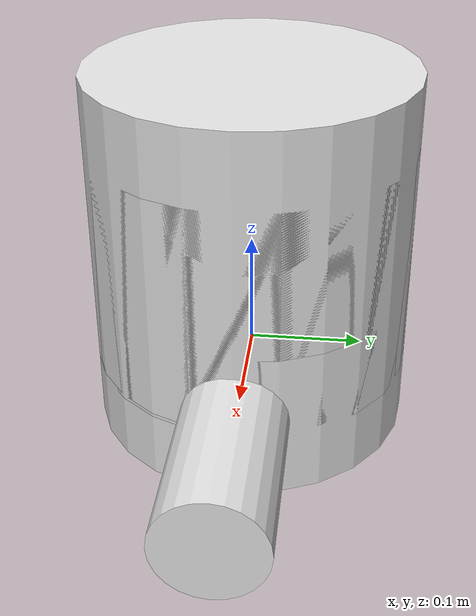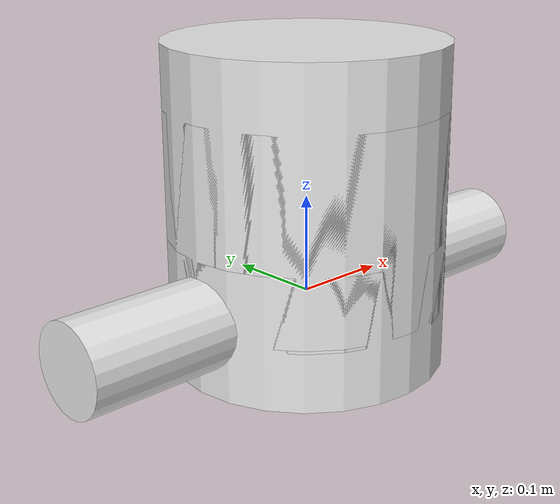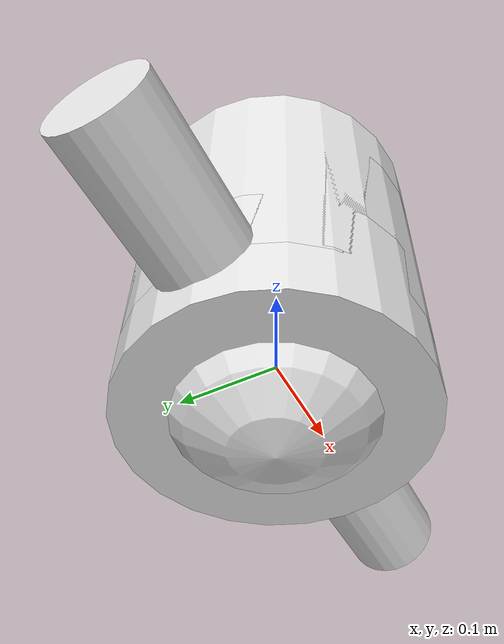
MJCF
<mujoco model="my_model">
    <compiler angle="radian" />
    <size njmax="500" nconmax="100" />
    <worldbody>
        <body name="baseTransX" pos="0 0 0">
            <inertial pos="0 0 0" mass="1" diaginertia="1 1 1" />
            <joint name="baseTransX" pos="0 0 0" axis="1 0 0" type="slide" limited="true" range="0 30" />
            <body name="baseTransY" pos="0 0 0">
                <inertial pos="0 0 0" mass="1" diaginertia="1 1 1" />
                <joint name="baseTransY" pos="0 0 0" axis="0 1 0" type="slide" limited="true" range="0 30" />
                <body name="baseTransZ" pos="0 0 0">
                    <inertial pos="0 0 0" mass="1" diaginertia="1 1 1" />
                    <joint name="baseTransZ" pos="0 0 0" axis="0 0 1" type="slide" limited="true" range="0 30" />
                    <body name="baseRotX" pos="0 0 0">
                        <inertial pos="0 0 0" mass="1" diaginertia="1 1 1" />
                        <joint name="baseRotX" pos="0 0 0" axis="1 0 0" limited="true" range="-3.14 3.14" />
                        <body name="baseRotY" pos="0 0 0">
                            <inertial pos="0 0 0" mass="1" diaginertia="1 1 1" />
                            <joint name="baseRotY" pos="0 0 0" axis="0 1 0" limited="true" range="-3.14 3.14" />
                            <body name="baseRotZ" pos="0 0 0">
                                <inertial pos="0 0 0" mass="1" diaginertia="1 1 1" />
                                <joint name="baseRotZ" pos="0 0 0" axis="0 0 1" limited="true" range="-3.14 3.14" />
                                <geom size="0.14 0.066" type="cylinder" contype="0" conaffinity="0" group="1" rgba="0.9 0.9 0.9 1" />
                                <body name="pelvisTransZ" pos="0 0 0">
                                    <inertial pos="0 0 0" mass="1" diaginertia="1 1 1" />
                                    <joint name="pelvisTransZ" pos="0 0 0" axis="0 0 1" type="slide" limited="true" range="0 1" />
                                    <body name="pelvisRotX" pos="0 0 0">
                                        <inertial pos="0 0 0" mass="1" diaginertia="1 1 1" />
                                        <joint name="pelvisRotX" pos="0 0 0" axis="1 0 0" limited="true" range="-3.14 3.14" />
                                        <body name="pelvisRotY" pos="0 0 0">
                                            <inertial pos="0 0 0" mass="1" diaginertia="1 1 1" />
                                            <joint name="pelvisRotY" pos="0 0 0" axis="0 1 0" limited="true" range="-3.14 3.14" />
                                            <body name="pelvisRotZ" pos="0 0 0">
                                                <inertial pos="0 0 0" mass="1" diaginertia="1 1 1" />
                                                <joint name="pelvisRotZ" pos="0 0 0" axis="0 0 1" limited="true" range="-3.14 3.14" />
                                                <geom size="0.14 0.099" pos="0 0 0.0951" type="cylinder" contype="0" conaffinity="0" group="1" rgba="0.9 0.9 0.9 1" />
                                                <body name="torsoTransX" pos="0 0 0">
                                                    <inertial pos="0 0 0" mass="1" diaginertia="1 1 1" />
                                                    <joint name="torsoTransX" pos="0 0 0" axis="1 0 0" type="slide" limited="true" range="0 1" />
                                                    <body name="torsoTransY" pos="0 0 0">
                                                        <inertial pos="0 0 0" mass="1" diaginertia="1 1 1" />
                                                        <joint name="torsoTransY" pos="0 0 0" axis="0 1 0" type="slide" limited="true" range="0 1" />
                                                        <body name="torsoTransZ" pos="0 0 0">
                                                            <inertial pos="0 0 0" mass="1" diaginertia="1 1 1" />
                                                            <joint name="torsoTransZ" pos="0 0 0" axis="0 0 1" type="slide" limited="true" range="0 1" />
                                                            <body name="torsoRotX" pos="0 0 0">
                                                                <inertial pos="0 0 0" mass="1" diaginertia="1 1 1" />
                                                                <joint name="torsoRotX" pos="0 0 0" axis="1 0 0" limited="true" range="-3.14 3.14" />
                                                                <body name="torsoRotY" pos="0 0 0">
                                                                    <inertial pos="0 0 0" mass="1" diaginertia="1 1 1" />
                                                                    <joint name="torsoRotY" pos="0 0 0" axis="0 1 0" limited="true" range="-3.14 3.14" />
                                                                    <body name="torsoRotZ" pos="0 0 0">
                                                                        <inertial pos="0 0 0" mass="1" diaginertia="1 1 1" />
                                                                        <joint name="torsoRotZ" pos="0 0 0" axis="0 0 1" limited="true" range="-3.14 3.14" />
                                                                        <geom size="0.14 0.132" pos="0 0 0.12507" type="cylinder" contype="0" conaffinity="0" group="1" rgba="0.9 0.9 0.9 1" />
                                                                        <body name="linnerShoulderTransX" pos="0 0 0">
                                                                            <inertial pos="0 0 0" mass="1" diaginertia="1 1 1" />
                                                                            <joint name="linnerShoulderTransX" pos="0 0 0" axis="1 0 0" type="slide" limited="true" range="0 1" />
                                                                            <body name="linnerShoulderTransY" pos="0 0 0">
                                                                                <inertial pos="0 0 0" mass="1" diaginertia="1 1 1" />
                                                                                <joint name="linnerShoulderTransY" pos="0 0 0" axis="0 1 0" type="slide" limited="true" range="0 1" />
                                                                                <body name="linnerShoulderTransZ" pos="0 0 0">
                                                                                    <inertial pos="0 0 0" mass="1" diaginertia="1 1 1" />
                                                                                    <joint name="linnerShoulderTransZ" pos="0 0 0" axis="0 0 1" type="slide" limited="true" range="0 1" />
                                                                                    <body name="linnerShoulderRotX" pos="0 0 0">
                                                                                        <inertial pos="0 0 0" mass="1" diaginertia="1 1 1" />
                                                                                        <joint name="linnerShoulderRotX" pos="0 0 0" axis="1 0 0" limited="true" range="-3.14 3.14" />
                                                                                        <body name="linnerShoulderRotY" pos="0 0 0">
                                                                                            <inertial pos="0 0 0" mass="1" diaginertia="1 1 1" />
                                                                                            <joint name="linnerShoulderRotY" pos="0 0 0" axis="0 1 0" limited="true" range="-3.14 3.14" />
                                                                                            <body name="linnerShoulderRotZ" pos="0 0 0">
                                                                                                <inertial pos="0 0 0" mass="1" diaginertia="1 1 1" />
                                                                                                <joint name="linnerShoulderRotZ" pos="0 0 0" axis="0 0 1" limited="true" range="-3.14 3.14" />
                                                                                                <body name="lShoulderTransX" pos="0 0 0">
                                                                                                    <inertial pos="0 0 0" mass="1" diaginertia="1 1 1" />
                                                                                                    <joint name="lShoulderTransX" pos="0 0 0" axis="1 0 0" type="slide" limited="true" range="0 1" />
                                                                                                    <body name="lShoulderRotX" pos="0 0 0">
                                                                                                        <inertial pos="0 0 0" mass="1" diaginertia="1 1 1" />
                                                                                                        <joint name="lShoulderRotX" pos="0 0 0" axis="1 0 0" limited="true" range="-3.14 3.14" />
                                                                                                        <body name="lShoulderRotY" pos="0 0 0">
                                                                                                            <inertial pos="0 0 0" mass="1" diaginertia="1 1 1" />
                                                                                                            <joint name="lShoulderRotY" pos="0 0 0" axis="0 1 0" limited="true" range="-3.14 3.14" />
                                                                                                            <body name="lShoulderRotZ" pos="0 0 0">
                                                                                                                <inertial pos="0 0 0" mass="1" diaginertia="1 1 1" />
                                                                                                                <joint name="lShoulderRotZ" pos="0 0 0" axis="0 0 1" limited="true" range="-3.14 3.14" />
                                                                                                                <geom size="0.05617" pos="-0.00282 -3e-05 0.00437" contype="0" conaffinity="0" group="1" rgba="0.9 0.9 0.9 1" />
                                                                                                                <geom size="0.045 0.12375" pos="0.15745 0 0.00437" quat="0.707105 0 0.707108 0" type="cylinder" contype="0" conaffinity="0" group="1" rgba="0.9 0.9 0.9 1" />
                                                                                                                <body name="lElbowTransX" pos="0 0 0">
                                                                                                                    <inertial pos="0 0 0" mass="1" diaginertia="1 1 1" />
                                                                                                                    <joint name="lElbowTransX" pos="0 0 0" axis="1 0 0" type="slide" limited="true" range="0 1" />
                                                                                                                    <body name="lElbowRotX" pos="0 0 0">
                                                                                                                        <inertial pos="0 0 0" mass="1" diaginertia="1 1 1" />
                                                                                                                        <joint name="lElbowRotX" pos="0 0 0" axis="1 0 0" limited="true" range="-3.14 3.14" />
                                                                                                                        <body name="lElbowRotY" pos="0 0 0">
                                                                                                                            <inertial pos="0 0 0" mass="1" diaginertia="1 1 1" />
                                                                                                                            <joint name="lElbowRotY" pos="0 0 0" axis="0 1 0" limited="true" range="-3.14 3.14" />
                                                                                                                            <body name="lElbowRotZ" pos="0 0 0">
                                                                                                                                <inertial pos="0 0 0" mass="1" diaginertia="1 1 1" />
                                                                                                                                <joint name="lElbowRotZ" pos="0 0 0" axis="0 0 1" limited="true" range="-3.14 3.14" />
                                                                                                                                <geom size="0.04 0.1085" pos="0.13503 0 0.00437" quat="0.707105 0 0.707108 0" type="cylinder" contype="0" conaffinity="0" group="1" rgba="0.9 0.9 0.9 1" />
                                                                                                                                <body name="lWristTransX" pos="0 0 0">
                                                                                                                                    <inertial pos="0 0 0" mass="1" diaginertia="1 1 1" />
                                                                                                                                    <joint name="lWristTransX" pos="0 0 0" axis="1 0 0" type="slide" limited="true" range="0 1" />
                                                                                                                                    <body name="lWristTransY" pos="0 0 0">
                                                                                                                                        <inertial pos="0 0 0" mass="1" diaginertia="1 1 1" />
                                                                                                                                        <joint name="lWristTransY" pos="0 0 0" axis="0 1 0" type="slide" limited="true" range="0 1" />
                                                                                                                                        <body name="lWristTransZ" pos="0 0 0">
                                                                                                                                            <inertial pos="0 0 0" mass="1" diaginertia="1 1 1" />
                                                                                                                                            <joint name="lWristTransZ" pos="0 0 0" axis="0 0 1" type="slide" limited="true" range="0 1" />
                                                                                                                                            <body name="lWristRotX" pos="0 0 0">
                                                                                                                                                <inertial pos="0 0 0" mass="1" diaginertia="1 1 1" />
                                                                                                                                                <joint name="lWristRotX" pos="0 0 0" axis="1 0 0" limited="true" range="-3.14 3.14" />
                                                                                                                                                <body name="lWristRotY" pos="0 0 0">
                                                                                                                                                    <inertial pos="0 0 0" mass="1" diaginertia="1 1 1" />
                                                                                                                                                    <joint name="lWristRotY" pos="0 0 0" axis="0 1 0" limited="true" range="-3.14 3.14" />
                                                                                                                                                    <body name="lWristRotZ" pos="0 0 0">
                                                                                                                                                        <inertial pos="0 0 0" mass="1" diaginertia="1 1 1" />
                                                                                                                                                        <joint name="lWristRotZ" pos="0 0 0" axis="0 0 1" limited="true" range="-3.14 3.14" />
                                                                                                                                                        <geom size="0.035 0.05 0.0125" pos="0.08708 0 0.00437" quat="0.707105 0 0 0.707108" type="box" contype="0" conaffinity="0" group="1" rgba="0.9 0.9 0.9 1" />
                                                                                                                                                    </body>
                                                                                                                                                </body>
                                                                                                                                            </body>
                                                                                                                                        </body>
                                                                                                                                    </body>
                                                                                                                                </body>
                                                                                                                            </body>
                                                                                                                        </body>
                                                                                                                    </body>
                                                                                                                </body>
                                                                                                            </body>
                                                                                                        </body>
                                                                                                    </body>
                                                                                                </body>
                                                                                            </body>
                                                                                        </body>
                                                                                    </body>
                                                                                </body>
                                                                            </body>
                                                                        </body>
                                                                        <body name="neckTransZ" pos="0 0 0">
                                                                            <inertial pos="0 0 0" mass="1" diaginertia="1 1 1" />
                                                                            <joint name="neckTransZ" pos="0 0 0" axis="0 0 1" type="slide" limited="true" range="0 1" />
                                                                            <body name="neckRotX" pos="0 0 0">
                                                                                <inertial pos="0 0 0" mass="1" diaginertia="1 1 1" />
                                                                                <joint name="neckRotX" pos="0 0 0" axis="1 0 0" limited="true" range="-3.14 3.14" />
                                                                                <body name="neckRotY" pos="0 0 0">
                                                                                    <inertial pos="0 0 0" mass="1" diaginertia="1 1 1" />
                                                                                    <joint name="neckRotY" pos="0 0 0" axis="0 1 0" limited="true" range="-3.14 3.14" />
                                                                                    <body name="neckRotZ" pos="0 0 0">
                                                                                        <inertial pos="0 0 0" mass="1" diaginertia="1 1 1" />
                                                                                        <joint name="neckRotZ" pos="0 0 0" axis="0 0 1" limited="true" range="-3.14 3.14" />
                                                                                        <geom size="0.056 0.022" pos="0 0 0.04533" type="cylinder" contype="0" conaffinity="0" group="1" rgba="0.9 0.9 0.9 1" />
                                                                                        <body name="headTransY" pos="0 0 0">
                                                                                            <inertial pos="0 0 0" mass="1" diaginertia="1 1 1" />
                                                                                            <joint name="headTransY" pos="0 0 0" axis="0 1 0" type="slide" limited="true" range="0 1" />
                                                                                            <body name="headTransZ" pos="0 0 0">
                                                                                                <inertial pos="0 0 0" mass="1" diaginertia="1 1 1" />
                                                                                                <joint name="headTransZ" pos="0 0 0" axis="0 0 1" type="slide" limited="true" range="0 1" />
                                                                                                <body name="headRotX" pos="0 0 0">
                                                                                                    <inertial pos="0 0 0" mass="1" diaginertia="1 1 1" />
                                                                                                    <joint name="headRotX" pos="0 0 0" axis="1 0 0" limited="true" range="-3.14 3.14" />
                                                                                                    <body name="headRotY" pos="0 0 0">
                                                                                                        <inertial pos="0 0 0" mass="1" diaginertia="1 1 1" />
                                                                                                        <joint name="headRotY" pos="0 0 0" axis="0 1 0" limited="true" range="-3.14 3.14" />
                                                                                                        <body name="headRotZ" pos="0 0 0">
                                                                                                            <inertial pos="0 0 0" mass="1" diaginertia="1 1 1" />
                                                                                                            <joint name="headRotZ" pos="0 0 0" axis="0 0 1" limited="true" range="-3.14 3.14" />
                                                                                                            <geom size="0.13" pos="0 0.00075 0.02589" contype="0" conaffinity="0" group="1" rgba="0.9 0.9 0.9 1" />
                                                                                                        </body>
                                                                                                    </body>
                                                                                                </body>
                                                                                            </body>
                                                                                        </body>
                                                                                    </body>
                                                                                </body>
                                                                            </body>
                                                                        </body>
                                                                        <body name="rinnerShoulderTransX" pos="0 0 0">
                                                                            <inertial pos="0 0 0" mass="1" diaginertia="1 1 1" />
                                                                            <joint name="rinnerShoulderTransX" pos="0 0 0" axis="1 0 0" type="slide" limited="true" range="0 1" />
                                                                            <body name="rinnerShoulderTransY" pos="0 0 0">
                                                                                <inertial pos="0 0 0" mass="1" diaginertia="1 1 1" />
                                                                                <joint name="rinnerShoulderTransY" pos="0 0 0" axis="0 1 0" type="slide" limited="true" range="0 1" />
                                                                                <body name="rinnerShoulderTransZ" pos="0 0 0">
                                                                                    <inertial pos="0 0 0" mass="1" diaginertia="1 1 1" />
                                                                                    <joint name="rinnerShoulderTransZ" pos="0 0 0" axis="0 0 1" type="slide" limited="true" range="0 1" />
                                                                                    <body name="rinnerShoulderRotX" pos="0 0 0">
                                                                                        <inertial pos="0 0 0" mass="1" diaginertia="1 1 1" />
                                                                                        <joint name="rinnerShoulderRotX" pos="0 0 0" axis="1 0 0" limited="true" range="-3.14 3.14" />
                                                                                        <body name="rinnerShoulderRotY" pos="0 0 0">
                                                                                            <inertial pos="0 0 0" mass="1" diaginertia="1 1 1" />
                                                                                            <joint name="rinnerShoulderRotY" pos="0 0 0" axis="0 1 0" limited="true" range="-3.14 3.14" />
                                                                                            <body name="rinnerShoulderRotZ" pos="0 0 0">
                                                                                                <inertial pos="0 0 0" mass="1" diaginertia="1 1 1" />
                                                                                                <joint name="rinnerShoulderRotZ" pos="0 0 0" axis="0 0 1" limited="true" range="-3.14 3.14" />
                                                                                                <body name="rShoulderTransX" pos="0 0 0">
                                                                                                    <inertial pos="0 0 0" mass="1" diaginertia="1 1 1" />
                                                                                                    <joint name="rShoulderTransX" pos="0 0 0" axis="1 0 0" type="slide" limited="true" range="0 1" />
                                                                                                    <body name="rShoulderRotX" pos="0 0 0">
                                                                                                        <inertial pos="0 0 0" mass="1" diaginertia="1 1 1" />
                                                                                                        <joint name="rShoulderRotX" pos="0 0 0" axis="1 0 0" limited="true" range="-3.14 3.14" />
                                                                                                        <body name="rShoulderRotY" pos="0 0 0">
                                                                                                            <inertial pos="0 0 0" mass="1" diaginertia="1 1 1" />
                                                                                                            <joint name="rShoulderRotY" pos="0 0 0" axis="0 1 0" limited="true" range="-3.14 3.14" />
                                                                                                            <body name="rShoulderRotZ" pos="0 0 0">
                                                                                                                <inertial pos="0 0 0" mass="1" diaginertia="1 1 1" />
                                                                                                                <joint name="rShoulderRotZ" pos="0 0 0" axis="0 0 1" limited="true" range="-3.14 3.14" />
                                                                                                                <geom size="0.05617" pos="0.00165 -3e-05 0.00437" contype="0" conaffinity="0" group="1" rgba="0.9 0.9 0.9 1" />
                                                                                                                <geom size="0.045 0.12375" pos="-0.15835 0 0.00437" quat="0.707105 0 0.707108 0" type="cylinder" contype="0" conaffinity="0" group="1" rgba="0.9 0.9 0.9 1" />
                                                                                                                <body name="rElbowTransX" pos="0 0 0">
                                                                                                                    <inertial pos="0 0 0" mass="1" diaginertia="1 1 1" />
                                                                                                                    <joint name="rElbowTransX" pos="0 0 0" axis="1 0 0" type="slide" limited="true" range="0 1" />
                                                                                                                    <body name="rElbowRotX" pos="0 0 0">
                                                                                                                        <inertial pos="0 0 0" mass="1" diaginertia="1 1 1" />
                                                                                                                        <joint name="rElbowRotX" pos="0 0 0" axis="1 0 0" limited="true" range="-3.14 3.14" />
                                                                                                                        <body name="rElbowRotY" pos="0 0 0">
                                                                                                                            <inertial pos="0 0 0" mass="1" diaginertia="1 1 1" />
                                                                                                                            <joint name="rElbowRotY" pos="0 0 0" axis="0 1 0" limited="true" range="-3.14 3.14" />
                                                                                                                            <body name="rElbowRotZ" pos="0 0 0">
                                                                                                                                <inertial pos="0 0 0" mass="1" diaginertia="1 1 1" />
                                                                                                                                <joint name="rElbowRotZ" pos="0 0 0" axis="0 0 1" limited="true" range="-3.14 3.14" />
                                                                                                                                <geom size="0.04 0.1085" pos="-0.1362 0 0.00437" quat="0.707105 0 0.707108 0" type="cylinder" contype="0" conaffinity="0" group="1" rgba="0.9 0.9 0.9 1" />
                                                                                                                                <body name="rWristTransX" pos="0 0 0">
                                                                                                                                    <inertial pos="0 0 0" mass="1" diaginertia="1 1 1" />
                                                                                                                                    <joint name="rWristTransX" pos="0 0 0" axis="1 0 0" type="slide" limited="true" range="0 1" />
                                                                                                                                    <body name="rWristTransY" pos="0 0 0">
                                                                                                                                        <inertial pos="0 0 0" mass="1" diaginertia="1 1 1" />
                                                                                                                                        <joint name="rWristTransY" pos="0 0 0" axis="0 1 0" type="slide" limited="true" range="0 1" />
                                                                                                                                        <body name="rWristTransZ" pos="0 0 0">
                                                                                                                                            <inertial pos="0 0 0" mass="1" diaginertia="1 1 1" />
                                                                                                                                            <joint name="rWristTransZ" pos="0 0 0" axis="0 0 1" type="slide" limited="true" range="0 1" />
                                                                                                                                            <body name="rWristRotX" pos="0 0 0">
                                                                                                                                                <inertial pos="0 0 0" mass="1" diaginertia="1 1 1" />
                                                                                                                                                <joint name="rWristRotX" pos="0 0 0" axis="1 0 0" limited="true" range="-3.14 3.14" />
                                                                                                                                                <body name="rWristRotY" pos="0 0 0">
                                                                                                                                                    <inertial pos="0 0 0" mass="1" diaginertia="1 1 1" />
                                                                                                                                                    <joint name="rWristRotY" pos="0 0 0" axis="0 1 0" limited="true" range="-3.14 3.14" />
                                                                                                                                                    <body name="rWristRotZ" pos="0 0 0">
                                                                                                                                                        <inertial pos="0 0 0" mass="1" diaginertia="1 1 1" />
                                                                                                                                                        <joint name="rWristRotZ" pos="0 0 0" axis="0 0 1" limited="true" range="-3.14 3.14" />
                                                                                                                                                        <geom size="0.035 0.05 0.0125" pos="-0.08825 0 0.00437" quat="0.707105 0 0 0.707108" type="box" contype="0" conaffinity="0" group="1" rgba="0.9 0.9 0.9 1" />
                                                                                                                                                    </body>
                                                                                                                                                </body>
                                                                                                                                            </body>
                                                                                                                                        </body>
                                                                                                                                    </body>
                                                                                                                                </body>
                                                                                                                            </body>
                                                                                                                        </body>
                                                                                                                    </body>
                                                                                                                </body>
                                                                                                            </body>
                                                                                                        </body>
                                                                                                    </body>
                                                                                                </body>
                                                                                            </body>
                                                                                        </body>
                                                                                    </body>
                                                                                </body>
                                                                            </body>
                                                                        </body>
                                                                    </body>
                                                                </body>
                                                            </body>
                                                        </body>
                                                    </body>
                                                </body>
                                            </body>
                                        </body>
                                    </body>
                                </body>
                            </body>
                        </body>
                    </body>
                </body>
            </body>
        </body>
    </worldbody>
</mujoco>
